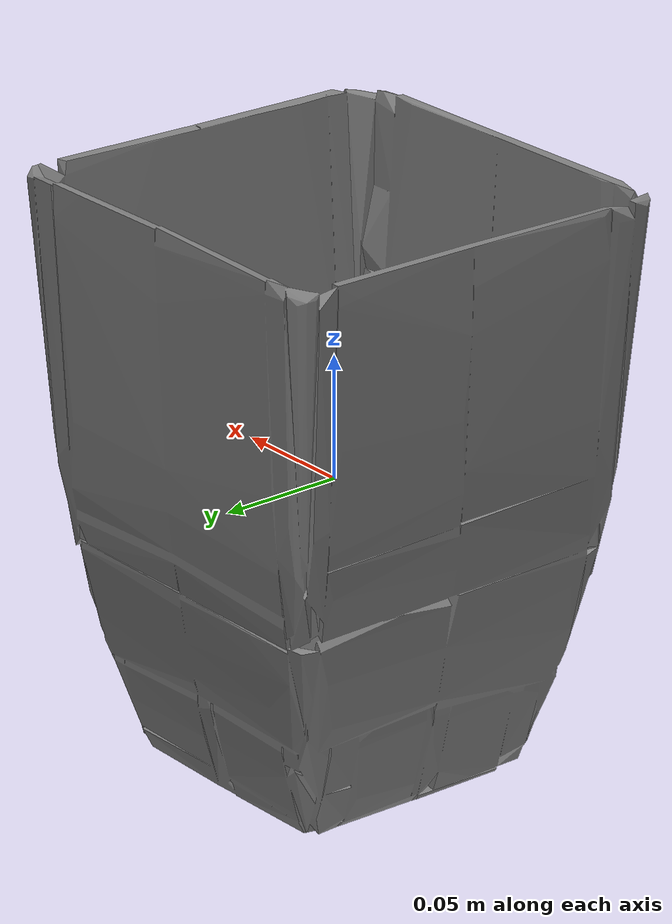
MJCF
<mujoco model="plant_container_Ecoforms_Plant_Container_Quadra_Turquoise_QP12_M">
  <default>
    <default class="visual">
      <geom group="2" type="mesh" contype="0" conaffinity="0" />
    </default>
    <default class="collision">
      <geom group="3" type="mesh" />
    </default>
  </default>
  <asset>
    <mesh file="plant_container_Ecoforms_Plant_Container_Quadra_Turquoise_QP12_M.stl" />
    <mesh file="plant_container_Ecoforms_Plant_Container_Quadra_Turquoise_QP12_M_collision_0.stl" />
    <mesh file="plant_container_Ecoforms_Plant_Container_Quadra_Turquoise_QP12_M_collision_1.stl" />
    <mesh file="plant_container_Ecoforms_Plant_Container_Quadra_Turquoise_QP12_M_collision_2.stl" />
    <mesh file="plant_container_Ecoforms_Plant_Container_Quadra_Turquoise_QP12_M_collision_3.stl" />
    <mesh file="plant_container_Ecoforms_Plant_Container_Quadra_Turquoise_QP12_M_collision_4.stl" />
    <mesh file="plant_container_Ecoforms_Plant_Container_Quadra_Turquoise_QP12_M_collision_5.stl" />
    <mesh file="plant_container_Ecoforms_Plant_Container_Quadra_Turquoise_QP12_M_collision_6.stl" />
    <mesh file="plant_container_Ecoforms_Plant_Container_Quadra_Turquoise_QP12_M_collision_7.stl" />
    <mesh file="plant_container_Ecoforms_Plant_Container_Quadra_Turquoise_QP12_M_collision_8.stl" />
    <mesh file="plant_container_Ecoforms_Plant_Container_Quadra_Turquoise_QP12_M_collision_9.stl" />
    <mesh file="plant_container_Ecoforms_Plant_Container_Quadra_Turquoise_QP12_M_collision_10.stl" />
    <mesh file="plant_container_Ecoforms_Plant_Container_Quadra_Turquoise_QP12_M_collision_11.stl" />
    <mesh file="plant_container_Ecoforms_Plant_Container_Quadra_Turquoise_QP12_M_collision_12.stl" />
    <mesh file="plant_container_Ecoforms_Plant_Container_Quadra_Turquoise_QP12_M_collision_13.stl" />
    <mesh file="plant_container_Ecoforms_Plant_Container_Quadra_Turquoise_QP12_M_collision_14.stl" />
    <mesh file="plant_container_Ecoforms_Plant_Container_Quadra_Turquoise_QP12_M_collision_15.stl" />
  </asset>
  <worldbody>
    <body name="plant_container_Ecoforms_Plant_Container_Quadra_Turquoise_QP12_M">
      <geom mesh="plant_container_Ecoforms_Plant_Container_Quadra_Turquoise_QP12_M" class="visual" />
      <geom mesh="plant_container_Ecoforms_Plant_Container_Quadra_Turquoise_QP12_M_collision_0" class="collision" />
      <geom mesh="plant_container_Ecoforms_Plant_Container_Quadra_Turquoise_QP12_M_collision_1" class="collision" />
      <geom mesh="plant_container_Ecoforms_Plant_Container_Quadra_Turquoise_QP12_M_collision_2" class="collision" />
      <geom mesh="plant_container_Ecoforms_Plant_Container_Quadra_Turquoise_QP12_M_collision_3" class="collision" />
      <geom mesh="plant_container_Ecoforms_Plant_Container_Quadra_Turquoise_QP12_M_collision_4" class="collision" />
      <geom mesh="plant_container_Ecoforms_Plant_Container_Quadra_Turquoise_QP12_M_collision_5" class="collision" />
      <geom mesh="plant_container_Ecoforms_Plant_Container_Quadra_Turquoise_QP12_M_collision_6" class="collision" />
      <geom mesh="plant_container_Ecoforms_Plant_Container_Quadra_Turquoise_QP12_M_collision_7" class="collision" />
      <geom mesh="plant_container_Ecoforms_Plant_Container_Quadra_Turquoise_QP12_M_collision_8" class="collision" />
      <geom mesh="plant_container_Ecoforms_Plant_Container_Quadra_Turquoise_QP12_M_collision_9" class="collision" />
      <geom mesh="plant_container_Ecoforms_Plant_Container_Quadra_Turquoise_QP12_M_collision_10" class="collision" />
      <geom mesh="plant_container_Ecoforms_Plant_Container_Quadra_Turquoise_QP12_M_collision_11" class="collision" />
      <geom mesh="plant_container_Ecoforms_Plant_Container_Quadra_Turquoise_QP12_M_collision_12" class="collision" />
      <geom mesh="plant_container_Ecoforms_Plant_Container_Quadra_Turquoise_QP12_M_collision_13" class="collision" />
      <geom mesh="plant_container_Ecoforms_Plant_Container_Quadra_Turquoise_QP12_M_collision_14" class="collision" />
      <geom mesh="plant_container_Ecoforms_Plant_Container_Quadra_Turquoise_QP12_M_collision_15" class="collision" />
    </body>
  </worldbody>
</mujoco>
